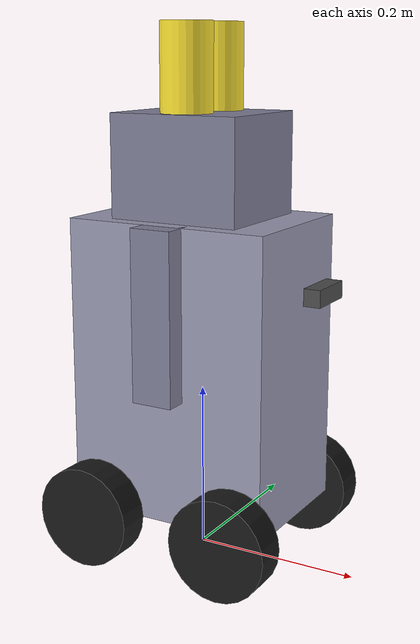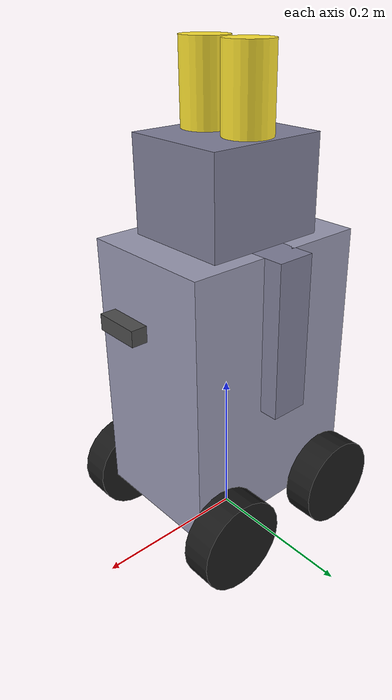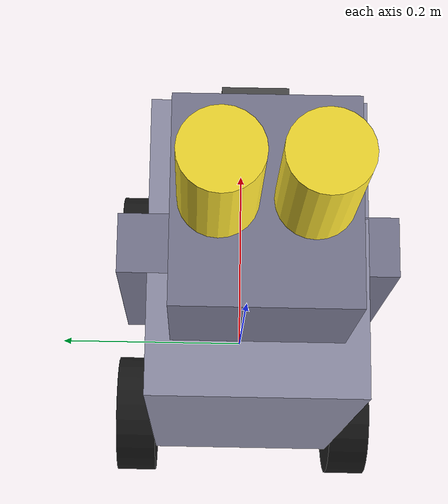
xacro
<?xml version="1.0"?>
<robot xmlns:xacro="http://ros.org/wiki/xacro" name="robot_hare_wheel_bot">

  <!-- Подключаем gazebo-плагины (diff drive, joint states, материалы) -->
  <xacro:include filename="robot.gazebo.xacro"/>

  <!-- === CONSTANTS === -->
  <xacro:property name="base_x" value="0.25"/>
  <xacro:property name="base_y" value="0.18"/>
  <xacro:property name="base_z" value="0.35"/>

  <!-- 4 small wheels (replaces 2 big wheels) -->
  <xacro:property name="drive_wheel_r" value="0.06"/>
  <xacro:property name="drive_wheel_w" value="0.04"/>

  <!-- wheel positions (front/rear) -->
  <xacro:property name="wheel_x_front" value="0.09"/>
  <xacro:property name="wheel_x_rear"  value="-0.09"/>

  <!-- Put wheels exactly outside the body -->
  <xacro:property name="wheel_y_offset" value="${base_y/2 + drive_wheel_w/2}"/>

  <!-- Make body sit correctly above the wheels -->
  <xacro:property name="base_origin_z" value="${drive_wheel_r + base_z/2}"/>

  <xacro:property name="head_x" value="0.16"/>
  <xacro:property name="head_y" value="0.14"/>
  <xacro:property name="head_z" value="0.12"/>
  <xacro:property name="head_origin_z" value="0.06"/>

  <xacro:property name="ear_r" value="0.03"/>
  <xacro:property name="ear_l" value="0.12"/>
  <xacro:property name="ear_y" value="0.035"/>
  <xacro:property name="ear_z" value="0.16"/>

  <xacro:property name="arm_x" value="0.05"/>
  <xacro:property name="arm_y" value="0.05"/>
  <xacro:property name="arm_z" value="0.20"/>
  <xacro:property name="arm_y_offset" value="0.09"/>
  <!-- arms near the top of the body, like before -->
  <xacro:property name="arm_origin_z" value="${base_origin_z + base_z/2 - arm_z/2}"/>

  <!-- === MATERIALS === -->
  <material name="body_mat"><color rgba="0.6 0.6 0.7 1.0"/></material>
  <material name="head_mat"><color rgba="0.5 0.5 0.6 1.0"/></material>
  <material name="arm_mat"><color rgba="0.5 0.5 0.6 1.0"/></material>
  <material name="ear_mat"><color rgba="1.0 0.9 0.2 1.0"/></material>
  <material name="wheel_mat"><color rgba="0.1 0.1 0.1 1.0"/></material>
  <material name="sensor_mat"><color rgba="0.3 0.3 0.3 1.0"/></material>
  <material name="lidar_mat"><color rgba="1.0 0.0 0.0 1.0"/></material>

  <!-- === BASE LINK === -->
  <link name="base_link">
    <inertial>
      <origin xyz="0 0 ${base_origin_z}"/>
      <mass value="3.5"/>
      <inertia ixx="0.12" ixy="0" ixz="0"
               iyy="0.12" iyz="0"
               izz="0.15"/>
    </inertial>

    <visual>
      <origin xyz="0 0 ${base_origin_z}"/>
      <geometry><box size="${base_x} ${base_y} ${base_z}"/></geometry>
      <material name="body_mat"/>
    </visual>

    <collision>
      <origin xyz="0 0 ${base_origin_z}"/>
      <geometry><box size="${base_x} ${base_y} ${base_z}"/></geometry>
    </collision>
  </link>

  <!-- === HEAD === -->
  <joint name="head_joint" type="fixed">
    <parent link="base_link"/>
    <child  link="head_link"/>
    <!-- attach head to the top face of the base -->
    <origin xyz="0 0 ${base_origin_z + base_z/2}"/>
  </joint>

  <link name="head_link">
    <inertial>
      <origin xyz="0 0 0"/>
      <mass value="1.0"/>
      <inertia ixx="0.02" ixy="0" ixz="0"
               iyy="0.02" iyz="0"
               izz="0.02"/>
    </inertial>

    <visual>
      <origin xyz="0 0 ${head_origin_z}"/>
      <geometry><box size="${head_x} ${head_y} ${head_z}"/></geometry>
      <material name="head_mat"/>
    </visual>

    <collision>
      <origin xyz="0 0 ${head_origin_z}"/>
      <geometry><box size="${head_x} ${head_y} ${head_z}"/></geometry>
    </collision>
  </link>

  <!-- === EAR MACRO === -->
  <xacro:macro name="ear" params="name ysign">
    <joint name="${name}_joint" type="fixed">
      <parent link="head_link"/>
      <child  link="${name}"/>
      <origin xyz="0 0 0"/>
    </joint>

    <link name="${name}">
      <inertial>
        <origin xyz="0 0 0"/>
        <mass value="0.1"/>
        <inertia ixx="0.0002" ixy="0" ixz="0"
                 iyy="0.0002" iyz="0"
                 izz="0.0001"/>
      </inertial>

      <visual>
        <origin xyz="0 ${ysign*ear_y} ${ear_z}"/>
        <geometry><cylinder radius="${ear_r}" length="${ear_l}"/></geometry>
        <material name="ear_mat"/>
      </visual>

      <collision>
        <origin xyz="0 ${ysign*ear_y} ${ear_z}"/>
        <geometry><cylinder radius="${ear_r}" length="${ear_l}"/></geometry>
      </collision>
    </link>
  </xacro:macro>

  <xacro:ear name="left_ear"  ysign="1"/>
  <xacro:ear name="right_ear" ysign="-1"/>

  <!-- === ARM MACRO === -->
  <xacro:macro name="arm" params="name ysign">
    <joint name="${name}_joint" type="fixed">
      <parent link="base_link"/>
      <child  link="${name}"/>
      <origin xyz="0 0 0"/>
    </joint>

    <link name="${name}">
      <inertial>
        <origin xyz="0 0 0"/>
        <mass value="0.3"/>
        <inertia ixx="0.005" ixy="0" ixz="0"
                 iyy="0.005" iyz="0"
                 izz="0.005"/>
      </inertial>

      <visual>
        <origin xyz="0 ${ysign*arm_y_offset} ${arm_origin_z}"/>
        <geometry><box size="${arm_x} ${arm_y} ${arm_z}"/></geometry>
        <material name="arm_mat"/>
      </visual>

      <collision>
        <origin xyz="0 ${ysign*arm_y_offset} ${arm_origin_z}"/>
        <geometry><box size="${arm_x} ${arm_y} ${arm_z}"/></geometry>
      </collision>
    </link>
  </xacro:macro>

  <xacro:arm name="left_arm"  ysign="1"/>
  <xacro:arm name="right_arm" ysign="-1"/>

  <!-- === 4 SMALL WHEELS MACRO === -->
  <xacro:macro name="drive_wheel" params="name x ysign">
    <joint name="${name}_joint" type="continuous">
      <parent link="base_link"/>
      <child  link="${name}_link"/>
      <origin xyz="${x} ${ysign*wheel_y_offset} ${drive_wheel_r}"/>
      <axis xyz="0 1 0"/>
    </joint>

    <link name="${name}_link">
      <inertial>
        <origin xyz="0 0 0"/>
        <mass value="0.25"/>
        <inertia ixx="0.003" ixy="0" ixz="0"
                 iyy="0.003" iyz="0"
                 izz="0.003"/>
      </inertial>

      <visual>
        <origin xyz="0 0 0" rpy="1.5708 0 0"/>
        <geometry><cylinder radius="${drive_wheel_r}" length="${drive_wheel_w}"/></geometry>
        <material name="wheel_mat"/>
      </visual>

      <collision>
        <origin xyz="0 0 0" rpy="1.5708 0 0"/>
        <geometry><cylinder radius="${drive_wheel_r}" length="${drive_wheel_w}"/></geometry>
      </collision>
    </link>
  </xacro:macro>

  <!-- Front pair -->
  <xacro:drive_wheel name="front_left_wheel"  x="${wheel_x_front}" ysign="1"/>
  <xacro:drive_wheel name="front_right_wheel" x="${wheel_x_front}" ysign="-1"/>

  <!-- Rear pair -->
  <xacro:drive_wheel name="rear_left_wheel"   x="${wheel_x_rear}"  ysign="1"/>
  <xacro:drive_wheel name="rear_right_wheel"  x="${wheel_x_rear}"  ysign="-1"/>

  <!-- === SENSORS (same topics as the other robot)            === -->
  <!--     lidar: topic "scan"                                  -->
  <!--     depth camera: topic "depth_camera"                   -->
  <!--     imu: topic "imu"                                     -->

  <!-- "roof" height of the base box in base_link coordinates -->
  <xacro:property name="base_top_z" value="${base_origin_z + base_z/2}"/>

  <xacro:property name="lidar_radius" value="0.03"/>
  <xacro:property name="lidar_height" value="0.03"/>
  <xacro:property name="lidar_link_z" value="${base_top_z + lidar_height/2}"/>

  <link name="lidar_link">
    <visual>
      <geometry><cylinder radius="${lidar_radius}" length="${lidar_height}"/></geometry>
      <material name="lidar_mat"/>
    </visual>
    <collision>
      <geometry><cylinder radius="${lidar_radius}" length="${lidar_height}"/></geometry>
    </collision>
    <inertial>
      <mass value="0.1"/>
      <inertia ixx="0.0001" ixy="0.0" ixz="0.0"
               iyy="0.0001" iyz="0.0"
               izz="0.0001"/>
    </inertial>
  </link>

  <joint name="lidar_joint" type="fixed">
    <parent link="base_link"/>
    <child  link="lidar_link"/>
    <origin xyz="0 0 ${lidar_link_z}" rpy="0 0 0"/>
  </joint>

  <gazebo reference="lidar_link">
    <material>Gazebo/Red</material>
    <sensor name="lidar" type="gpu_lidar">
      <pose>0 0 0 0 0 0</pose>
      <always_on>true</always_on>
      <visualize>true</visualize>
      <update_rate>10</update_rate>

      <!-- IMPORTANT: same topic name as your lidar.launch.py bridge -->
      <topic>scan</topic>
      <gz_frame_id>lidar_link</gz_frame_id>

      <ray>
        <scan>
          <horizontal>
            <samples>360</samples>
            <resolution>1</resolution>
            <min_angle>-3.14</min_angle>
            <max_angle>3.14</max_angle>
          </horizontal>
        </scan>
        <range>
          <min>0.15</min>
          <max>6.0</max>
          <resolution>0.01</resolution>
        </range>
      </ray>
    </sensor>
  </gazebo>

  <xacro:property name="camera_size" value="0.02"/>
  <xacro:property name="camera_x" value="${base_x/2 + 0.03}"/>
  <xacro:property name="camera_y" value="0.0"/>
  <xacro:property name="camera_z" value="${base_origin_z + 0.10}"/>

  <link name="depth_camera_link">
    <visual>
      <origin xyz="0 0 0" rpy="0 0 0"/>
      <geometry><box size="${camera_size} ${camera_size*3} ${camera_size}"/></geometry>
      <material name="sensor_mat"/>
    </visual>
    <collision>
      <origin xyz="0 0 0" rpy="0 0 0"/>
      <geometry><box size="${camera_size} ${camera_size*3} ${camera_size}"/></geometry>
    </collision>
    <inertial>
      <mass value="0.05"/>
      <inertia ixx="0.0001" ixy="0.0" ixz="0.0"
               iyy="0.0001" iyz="0.0"
               izz="0.0001"/>
    </inertial>
  </link>

  <joint name="depth_camera_joint" type="fixed">
    <parent link="base_link"/>
    <child  link="depth_camera_link"/>
    <origin xyz="${camera_x} ${camera_y} ${camera_z}" rpy="0 0 0"/>
  </joint>

  <gazebo reference="depth_camera_link">
    <sensor name="depth_camera" type="depth_camera">
      <pose>0 0 0 0 0 0</pose>
      <update_rate>6</update_rate>
      <always_on>true</always_on>
      <visualize>true</visualize>

      <!-- IMPORTANT: same topic name as your depth.launch.py bridge -->
      <topic>depth_camera</topic>
      <gz_frame_id>depth_camera_link</gz_frame_id>

      <camera>
        <horizontal_fov>1.51843645</horizontal_fov>
        <image>
          <width>848</width>
          <height>480</height>
          <format>R8G8B8</format>
        </image>
        <clip>
          <near>0.1</near>
          <far>10</far>
        </clip>
        <lens>
          <intrinsics>
            <fx>421.61578369140625</fx>
            <fy>421.61578369140625</fy>
            <cx>422.2854309082031</cx>
            <cy>236.57237243652344</cy>
            <s>0</s>
          </intrinsics>
        </lens>
        <depth_camera>
          <output>depths</output>
        </depth_camera>
      </camera>
    </sensor>
  </gazebo>

  <xacro:property name="imu_size" value="0.01"/>
  <xacro:property name="imu_x" value="0.0"/>
  <xacro:property name="imu_y" value="0.0"/>
  <xacro:property name="imu_z" value="${base_origin_z}"/>

  <link name="imu_link">
    <visual>
      <origin xyz="0 0 0" rpy="0 0 0"/>
      <geometry><box size="${imu_size} ${imu_size} ${imu_size}"/></geometry>
      <material name="sensor_mat"/>
    </visual>
    <collision>
      <origin xyz="0 0 0" rpy="0 0 0"/>
      <geometry><box size="${imu_size} ${imu_size} ${imu_size}"/></geometry>
    </collision>
    <inertial>
      <mass value="0.01"/>
      <inertia ixx="0.000001" ixy="0.0" ixz="0.0"
               iyy="0.000001" iyz="0.0"
               izz="0.000001"/>
    </inertial>
  </link>

  <joint name="imu_joint" type="fixed">
    <parent link="base_link"/>
    <child  link="imu_link"/>
    <origin xyz="${imu_x} ${imu_y} ${imu_z}" rpy="0 0 0"/>
  </joint>

  <gazebo reference="imu_link">
    <sensor name="imu_sensor" type="imu">
      <pose>0 0 0 0 0 0</pose>
      <always_on>true</always_on>
      <update_rate>50</update_rate>
      <visualize>true</visualize>
      <imu>
        <angular_velocity>
          <x><noise type="gaussian"><mean>0.0</mean><stddev>2e-4</stddev></noise></x>
          <y><noise type="gaussian"><mean>0.0</mean><stddev>2e-4</stddev></noise></y>
          <z><noise type="gaussian"><mean>0.0</mean><stddev>2e-4</stddev></noise></z>
        </angular_velocity>
        <linear_acceleration>
          <x><noise type="gaussian"><mean>0.0</mean><stddev>1.7e-2</stddev></noise></x>
          <y><noise type="gaussian"><mean>0.0</mean><stddev>1.7e-2</stddev></noise></y>
          <z><noise type="gaussian"><mean>0.0</mean><stddev>1.7e-2</stddev></noise></z>
        </linear_acceleration>
      </imu>

      <!-- IMPORTANT: same topic name as your imu.launch.py bridge -->
      <topic>imu</topic>
    </sensor>
  </gazebo>

</robot>
